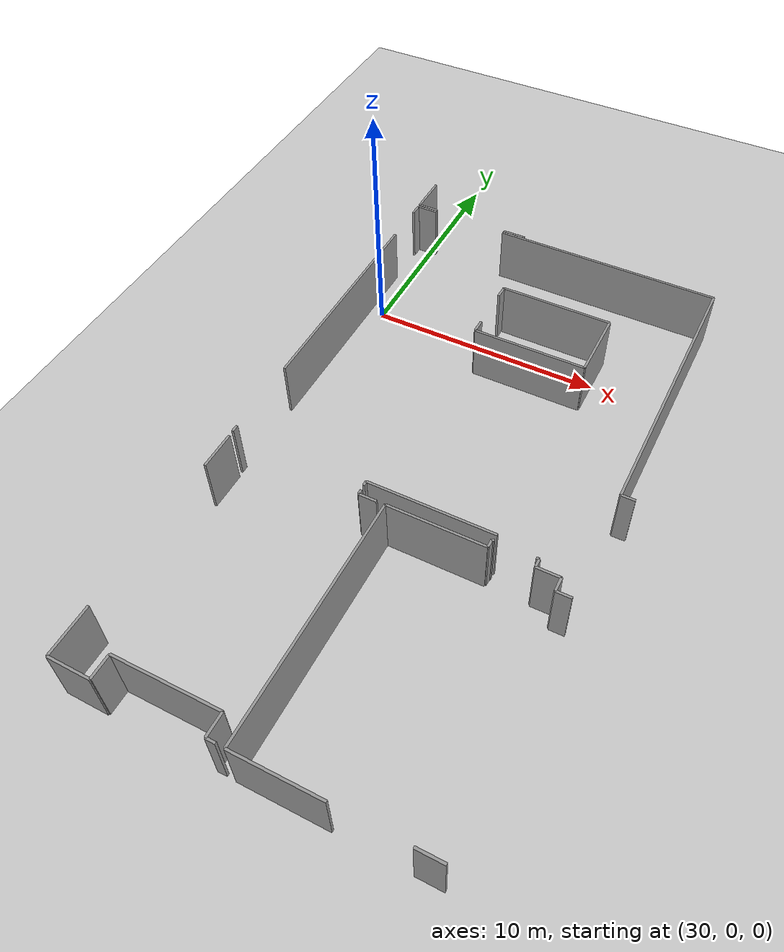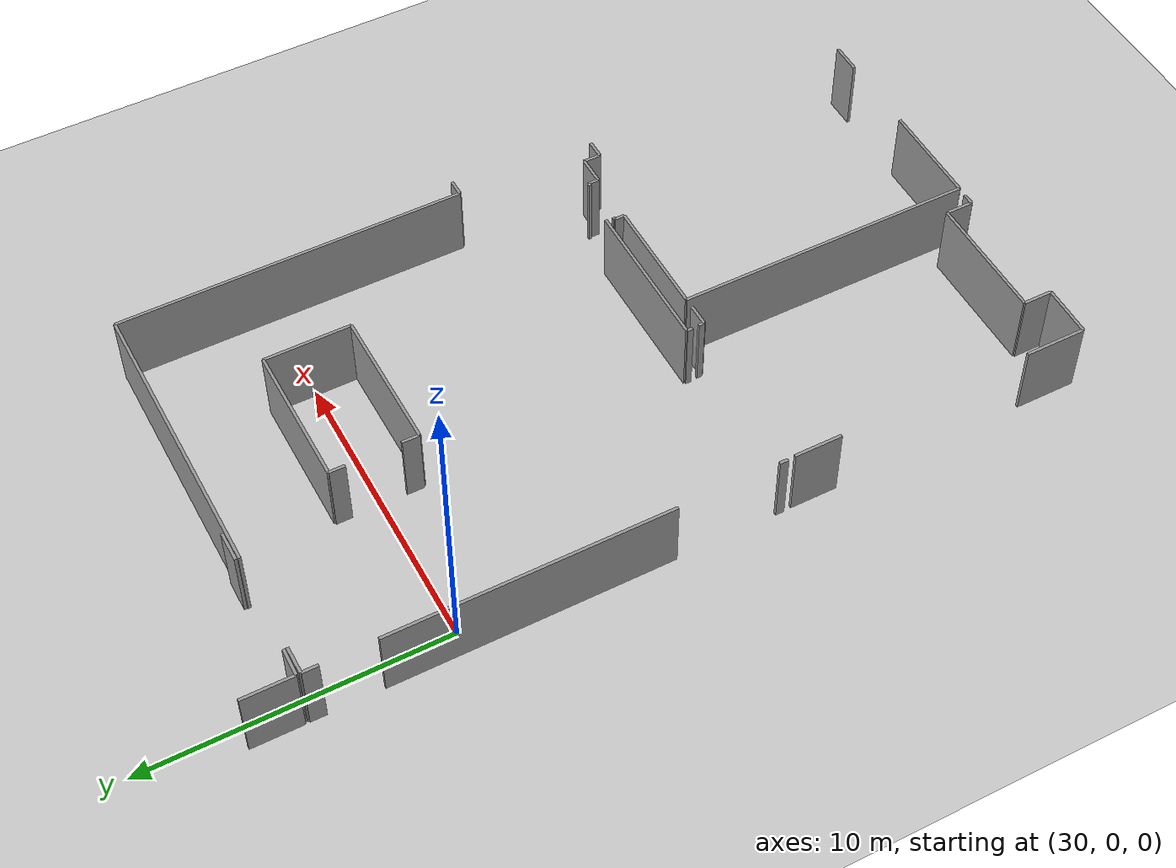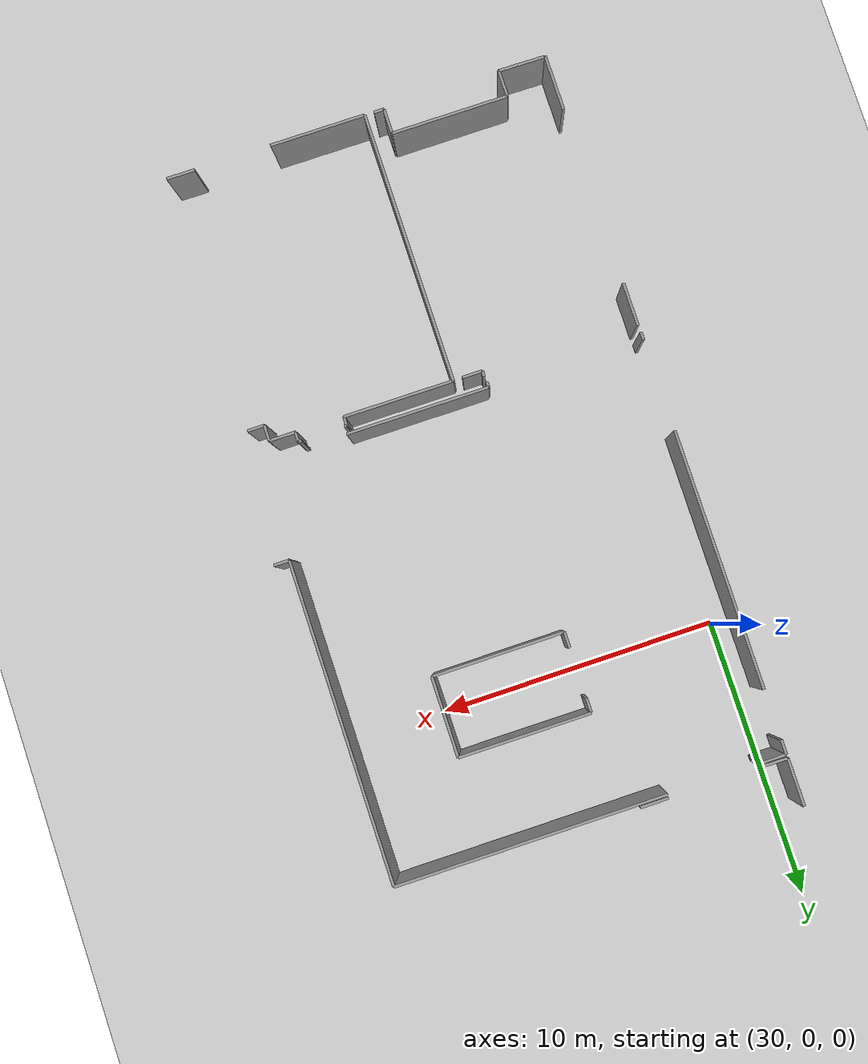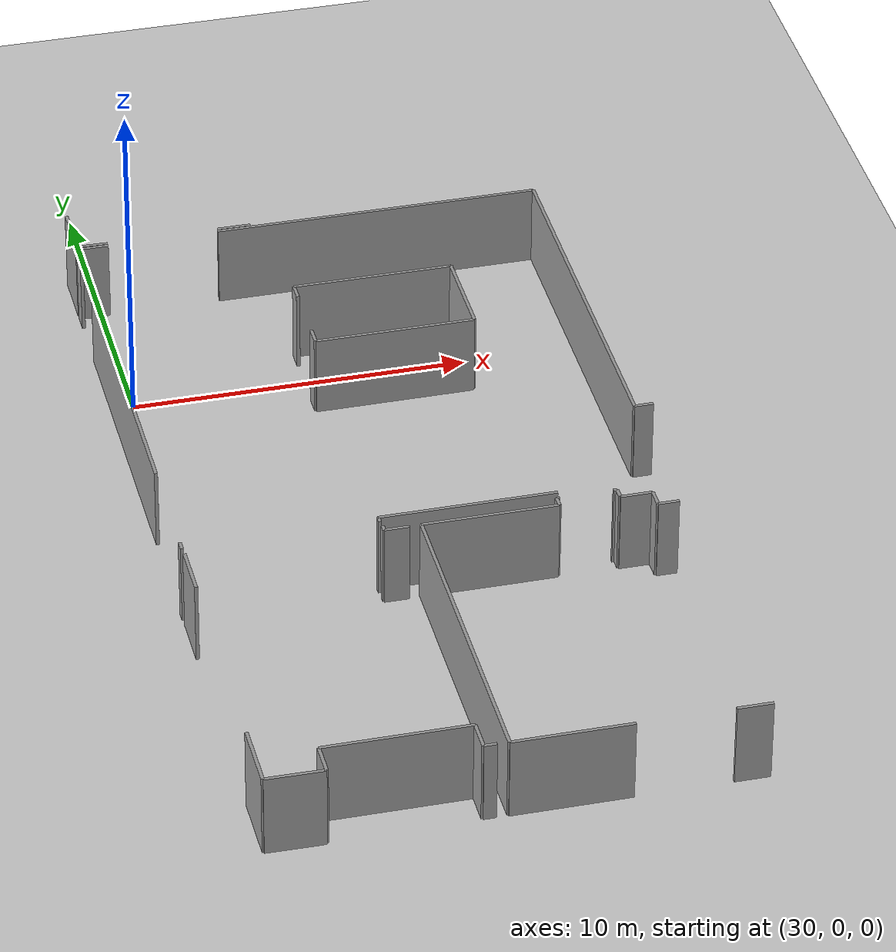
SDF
<sdf version="1.6">
 <world name="default">
  <model name="ground_plane">
   <static>1</static>
   <link name="link">
    <collision name="collision">
     <geometry><plane><normal>0 0 1</normal><size>100 100</size></plane></geometry>
     <surface><friction><ode><mu>100</mu><mu2>50</mu2></ode></friction></surface>
    </collision>
    <visual name="visual">
     <cast_shadows>0</cast_shadows>
     <geometry><plane><normal>0 0 1</normal><size>100 100</size></plane></geometry>
     <material>
      <script><uri>file://media/materials/scripts/gazebo.material</uri><name>Gazebo/Grey</name></script>
     </material>
    </visual>
   </link>
  </model>
  <model name="50055639">
   <static>1</static>
   <link name="Wall_371">
    <collision name="Wall_371_Collision">
     <geometry><box><size>2.02325492834 0.1 2.5</size></box></geometry>
     <pose>1.01162746417 0 1.25 0 0 0</pose>
    </collision>
    <visual name="Wall_371_Visual">
     <pose>1.01162746417 0 1.25 0 0 0</pose>
     <geometry><box><size>2.02325492834 0.1 2.5</size></box></geometry>
     <material>
      <script><uri>file://media/materials/scripts/gazebo.material</uri><name>Gazebo/Grey</name></script>
      <ambient>1 1 1 1</ambient>
     </material>
    </visual>
    <pose>99.7638964699 -41.7102781198 0 0 0 1.57079632679</pose>
   </link>
   <link name="Wall_372">
    <collision name="Wall_372_Collision">
     <geometry><box><size>1.58367077521 0.1 2.5</size></box></geometry>
     <pose>0.791835387603 0 1.25 0 0 0</pose>
    </collision>
    <visual name="Wall_372_Visual">
     <pose>0.791835387603 0 1.25 0 0 0</pose>
     <geometry><box><size>1.58367077521 0.1 2.5</size></box></geometry>
     <material>
      <script><uri>file://media/materials/scripts/gazebo.material</uri><name>Gazebo/Grey</name></script>
      <ambient>1 1 1 1</ambient>
     </material>
    </visual>
    <pose>99.7638964699 -33.1428934107 0 0 0 1.57079632679</pose>
   </link>
   <link name="Wall_373">
    <collision name="Wall_373_Collision">
     <geometry><box><size>0.193706444611 0.1 2.5</size></box></geometry>
     <pose>0.0968532223054 0 1.25 0 0 0</pose>
    </collision>
    <visual name="Wall_373_Visual">
     <pose>0.0968532223054 0 1.25 0 0 0</pose>
     <geometry><box><size>0.193706444611 0.1 2.5</size></box></geometry>
     <material>
      <script><uri>file://media/materials/scripts/gazebo.material</uri><name>Gazebo/Grey</name></script>
      <ambient>1 1 1 1</ambient>
     </material>
    </visual>
    <pose>105.401820282 -31.5592226355 0 0 0 -1.57079632679</pose>
   </link>
   <link name="Wall_374">
    <collision name="Wall_374_Collision">
     <geometry><box><size>0.730143820054 0.1 2.5</size></box></geometry>
     <pose>0.365071910027 0 1.25 0 0 0</pose>
    </collision>
    <visual name="Wall_374_Visual">
     <pose>0.365071910027 0 1.25 0 0 0</pose>
     <geometry><box><size>0.730143820054 0.1 2.5</size></box></geometry>
     <material>
      <script><uri>file://media/materials/scripts/gazebo.material</uri><name>Gazebo/Grey</name></script>
      <ambient>1 1 1 1</ambient>
     </material>
    </visual>
    <pose>105.401820282 -31.7529290801 0 0 0 0.0</pose>
   </link>
   <link name="Wall_375">
    <collision name="Wall_375_Collision">
     <geometry><box><size>0.373195902461 0.1 2.5</size></box></geometry>
     <pose>0.186597951231 0 1.25 0 0 0</pose>
    </collision>
    <visual name="Wall_375_Visual">
     <pose>0.186597951231 0 1.25 0 0 0</pose>
     <geometry><box><size>0.373195902461 0.1 2.5</size></box></geometry>
     <material>
      <script><uri>file://media/materials/scripts/gazebo.material</uri><name>Gazebo/Grey</name></script>
      <ambient>1 1 1 1</ambient>
     </material>
    </visual>
    <pose>106.131964102 -41.6842559565 0 0 0 3.14159265359</pose>
   </link>
   <link name="Wall_376">
    <collision name="Wall_376_Collision">
     <geometry><box><size>0.916487896521 0.1 2.5</size></box></geometry>
     <pose>0.45824394826 0 1.25 0 0 0</pose>
    </collision>
    <visual name="Wall_376_Visual">
     <pose>0.45824394826 0 1.25 0 0 0</pose>
     <geometry><box><size>0.916487896521 0.1 2.5</size></box></geometry>
     <material>
      <script><uri>file://media/materials/scripts/gazebo.material</uri><name>Gazebo/Grey</name></script>
      <ambient>1 1 1 1</ambient>
     </material>
    </visual>
    <pose>105.7587682 -41.6842559565 0 0 0 1.57079632679</pose>
   </link>
   <link name="Wall_377">
    <collision name="Wall_377_Collision">
     <geometry><box><size>4.27385470747 0.1 2.5</size></box></geometry>
     <pose>2.13692735374 0 1.25 0 0 0</pose>
    </collision>
    <visual name="Wall_377_Visual">
     <pose>2.13692735374 0 1.25 0 0 0</pose>
     <geometry><box><size>4.27385470747 0.1 2.5</size></box></geometry>
     <material>
      <script><uri>file://media/materials/scripts/gazebo.material</uri><name>Gazebo/Grey</name></script>
      <ambient>1 1 1 1</ambient>
     </material>
    </visual>
    <pose>105.7587682 -40.76776806 0 0 0 3.14159265359</pose>
   </link>
   <link name="Wall_378">
    <collision name="Wall_378_Collision">
     <geometry><box><size>0.96180454182 0.1 2.5</size></box></geometry>
     <pose>0.48090227091 0 1.25 0 0 0</pose>
    </collision>
    <visual name="Wall_378_Visual">
     <pose>0.48090227091 0 1.25 0 0 0</pose>
     <geometry><box><size>0.96180454182 0.1 2.5</size></box></geometry>
     <material>
      <script><uri>file://media/materials/scripts/gazebo.material</uri><name>Gazebo/Grey</name></script>
      <ambient>1 1 1 1</ambient>
     </material>
    </visual>
    <pose>101.484913492 -40.76776806 0 0 0 -1.57079632679</pose>
   </link>
   <link name="Wall_379">
    <collision name="Wall_379_Collision">
     <geometry><box><size>1.72112517502 0.1 2.5</size></box></geometry>
     <pose>0.860562587511 0 1.25 0 0 0</pose>
    </collision>
    <visual name="Wall_379_Visual">
     <pose>0.860562587511 0 1.25 0 0 0</pose>
     <geometry><box><size>1.72112517502 0.1 2.5</size></box></geometry>
     <material>
      <script><uri>file://media/materials/scripts/gazebo.material</uri><name>Gazebo/Grey</name></script>
      <ambient>1 1 1 1</ambient>
     </material>
    </visual>
    <pose>101.484913492 -41.7295726018 0 0 0 3.13038203018</pose>
   </link>
   <link name="Wall_380">
    <collision name="Wall_380_Collision">
     <geometry><box><size>9.95861841354 0.1 2.5</size></box></geometry>
     <pose>4.97930920677 0 1.25 0 0 0</pose>
    </collision>
    <visual name="Wall_380_Visual">
     <pose>4.97930920677 0 1.25 0 0 0</pose>
     <geometry><box><size>9.95861841354 0.1 2.5</size></box></geometry>
     <material>
      <script><uri>file://media/materials/scripts/gazebo.material</uri><name>Gazebo/Grey</name></script>
      <ambient>1 1 1 1</ambient>
     </material>
    </visual>
    <pose>106.46707879 -41.7007578162 0 0 0 1.57079632679</pose>
   </link>
   <link name="Wall_381">
    <collision name="Wall_381_Collision">
     <geometry><box><size>3.98380279008 0.1 2.5</size></box></geometry>
     <pose>1.99190139504 0 1.25 0 0 0</pose>
    </collision>
    <visual name="Wall_381_Visual">
     <pose>1.99190139504 0 1.25 0 0 0</pose>
     <geometry><box><size>3.98380279008 0.1 2.5</size></box></geometry>
     <material>
      <script><uri>file://media/materials/scripts/gazebo.material</uri><name>Gazebo/Grey</name></script>
      <ambient>1 1 1 1</ambient>
     </material>
    </visual>
    <pose>106.46707879 -31.7421394026 0 0 0 0.0</pose>
   </link>
   <link name="Wall_382">
    <collision name="Wall_382_Collision">
     <geometry><box><size>0.331179629089 0.1 2.5</size></box></geometry>
     <pose>0.165589814544 0 1.25 0 0 0</pose>
    </collision>
    <visual name="Wall_382_Visual">
     <pose>0.165589814544 0 1.25 0 0 0</pose>
     <geometry><box><size>0.331179629089 0.1 2.5</size></box></geometry>
     <material>
      <script><uri>file://media/materials/scripts/gazebo.material</uri><name>Gazebo/Grey</name></script>
      <ambient>1 1 1 1</ambient>
     </material>
    </visual>
    <pose>110.45088158 -31.7421394026 0 0 0 1.57079632679</pose>
   </link>
   <link name="Wall_383">
    <collision name="Wall_383_Collision">
     <geometry><box><size>0.0878406681984 0.1 2.5</size></box></geometry>
     <pose>0.0439203340992 0 1.25 0 0 0</pose>
    </collision>
    <visual name="Wall_383_Visual">
     <pose>0.0439203340992 0 1.25 0 0 0</pose>
     <geometry><box><size>0.0878406681984 0.1 2.5</size></box></geometry>
     <material>
      <script><uri>file://media/materials/scripts/gazebo.material</uri><name>Gazebo/Grey</name></script>
      <ambient>1 1 1 1</ambient>
     </material>
    </visual>
    <pose>110.45088158 -31.4109597735 0 0 0 0.0</pose>
   </link>
   <link name="Wall_384">
    <collision name="Wall_384_Collision">
     <geometry><box><size>0.111704895975 0.1 2.5</size></box></geometry>
     <pose>0.0558524479874 0 1.25 0 0 0</pose>
    </collision>
    <visual name="Wall_384_Visual">
     <pose>0.0558524479874 0 1.25 0 0 0</pose>
     <geometry><box><size>0.111704895975 0.1 2.5</size></box></geometry>
     <material>
      <script><uri>file://media/materials/scripts/gazebo.material</uri><name>Gazebo/Grey</name></script>
      <ambient>1 1 1 1</ambient>
     </material>
    </visual>
    <pose>112.094593737 -31.4109597735 0 0 0 0.0</pose>
   </link>
   <link name="Wall_385">
    <collision name="Wall_385_Collision">
     <geometry><box><size>0.345777427995 0.1 2.5</size></box></geometry>
     <pose>0.172888713997 0 1.25 0 0 0</pose>
    </collision>
    <visual name="Wall_385_Visual">
     <pose>0.172888713997 0 1.25 0 0 0</pose>
     <geometry><box><size>0.345777427995 0.1 2.5</size></box></geometry>
     <material>
      <script><uri>file://media/materials/scripts/gazebo.material</uri><name>Gazebo/Grey</name></script>
      <ambient>1 1 1 1</ambient>
     </material>
    </visual>
    <pose>112.206298633 -31.4109597735 0 0 0 -1.57079632679</pose>
   </link>
   <link name="Wall_386">
    <collision name="Wall_386_Collision">
     <geometry><box><size>0.944414120514 0.1 2.5</size></box></geometry>
     <pose>0.472207060257 0 1.25 0 0 0</pose>
    </collision>
    <visual name="Wall_386_Visual">
     <pose>0.472207060257 0 1.25 0 0 0</pose>
     <geometry><box><size>0.944414120514 0.1 2.5</size></box></geometry>
     <material>
      <script><uri>file://media/materials/scripts/gazebo.material</uri><name>Gazebo/Grey</name></script>
      <ambient>1 1 1 1</ambient>
     </material>
    </visual>
    <pose>112.206298633 -31.7567372015 0 0 0 0.0</pose>
   </link>
   <link name="Wall_387">
    <collision name="Wall_387_Collision">
     <geometry><box><size>0.565252161109 0.1 2.5</size></box></geometry>
     <pose>0.282626080554 0 1.25 0 0 0</pose>
    </collision>
    <visual name="Wall_387_Visual">
     <pose>0.282626080554 0 1.25 0 0 0</pose>
     <geometry><box><size>0.565252161109 0.1 2.5</size></box></geometry>
     <material>
      <script><uri>file://media/materials/scripts/gazebo.material</uri><name>Gazebo/Grey</name></script>
      <ambient>1 1 1 1</ambient>
     </material>
    </visual>
    <pose>113.150712753 -31.7567372015 0 0 0 -1.57079632679</pose>
   </link>
   <link name="Wall_388">
    <collision name="Wall_388_Collision">
     <geometry><box><size>0.614376927861 0.1 2.5</size></box></geometry>
     <pose>0.307188463931 0 1.25 0 0 0</pose>
    </collision>
    <visual name="Wall_388_Visual">
     <pose>0.307188463931 0 1.25 0 0 0</pose>
     <geometry><box><size>0.614376927861 0.1 2.5</size></box></geometry>
     <material>
      <script><uri>file://media/materials/scripts/gazebo.material</uri><name>Gazebo/Grey</name></script>
      <ambient>1 1 1 1</ambient>
     </material>
    </visual>
    <pose>113.150712753 -32.3219893626 0 0 0 0.0</pose>
   </link>
   <link name="Wall_392">
    <collision name="Wall_392_Collision">
     <geometry><box><size>1.02946216631 0.1 2.5</size></box></geometry>
     <pose>0.514731083157 0 1.25 0 0 0</pose>
    </collision>
    <visual name="Wall_392_Visual">
     <pose>0.514731083157 0 1.25 0 0 0</pose>
     <geometry><box><size>1.02946216631 0.1 2.5</size></box></geometry>
     <material>
      <script><uri>file://media/materials/scripts/gazebo.material</uri><name>Gazebo/Grey</name></script>
      <ambient>1 1 1 1</ambient>
     </material>
    </visual>
    <pose>113.765089681 -41.7007578162 0 0 0 3.14159265359</pose>
   </link>
   <link name="Wall_393">
    <collision name="Wall_393_Collision">
     <geometry><box><size>3.48036913391 0.1 2.5</size></box></geometry>
     <pose>1.74018456695 0 1.25 0 0 0</pose>
    </collision>
    <visual name="Wall_393_Visual">
     <pose>1.74018456695 0 1.25 0 0 0</pose>
     <geometry><box><size>3.48036913391 0.1 2.5</size></box></geometry>
     <material>
      <script><uri>file://media/materials/scripts/gazebo.material</uri><name>Gazebo/Grey</name></script>
      <ambient>1 1 1 1</ambient>
     </material>
    </visual>
    <pose>109.947447924 -41.7007578162 0 0 0 3.14159265359</pose>
   </link>
   <link name="Wall_394">
    <collision name="Wall_394_Collision">
     <geometry><box><size>0.29081354168 0.1 2.5</size></box></geometry>
     <pose>0.14540677084 0 1.25 0 0 0</pose>
    </collision>
    <visual name="Wall_394_Visual">
     <pose>0.14540677084 0 1.25 0 0 0</pose>
     <geometry><box><size>0.29081354168 0.1 2.5</size></box></geometry>
     <material>
      <script><uri>file://media/materials/scripts/gazebo.material</uri><name>Gazebo/Grey</name></script>
      <ambient>1 1 1 1</ambient>
     </material>
    </visual>
    <pose>99.7440942383 -31.3176607979 0 0 0 1.57079632679</pose>
   </link>
   <link name="Wall_395">
    <collision name="Wall_395_Collision">
     <geometry><box><size>9.35947397149 0.1 2.5</size></box></geometry>
     <pose>4.67973698574 0 1.25 0 0 0</pose>
    </collision>
    <visual name="Wall_395_Visual">
     <pose>4.67973698574 0 1.25 0 0 0</pose>
     <geometry><box><size>9.35947397149 0.1 2.5</size></box></geometry>
     <material>
      <script><uri>file://media/materials/scripts/gazebo.material</uri><name>Gazebo/Grey</name></script>
      <ambient>1 1 1 1</ambient>
     </material>
    </visual>
    <pose>99.7440942383 -27.6814125592 0 0 0 1.57079632679</pose>
   </link>
   <link name="Wall_396">
    <collision name="Wall_396_Collision">
     <geometry><box><size>0.529328882062 0.1 2.5</size></box></geometry>
     <pose>0.264664441031 0 1.25 0 0 0</pose>
    </collision>
    <visual name="Wall_396_Visual">
     <pose>0.264664441031 0 1.25 0 0 0</pose>
     <geometry><box><size>0.529328882062 0.1 2.5</size></box></geometry>
     <material>
      <script><uri>file://media/materials/scripts/gazebo.material</uri><name>Gazebo/Grey</name></script>
      <ambient>1 1 1 1</ambient>
     </material>
    </visual>
    <pose>99.7440942383 -16.5359296259 0 0 0 1.57079632679</pose>
   </link>
   <link name="Wall_397">
    <collision name="Wall_397_Collision">
     <geometry><box><size>0.911029589104 0.1 2.5</size></box></geometry>
     <pose>0.455514794552 0 1.25 0 0 0</pose>
    </collision>
    <visual name="Wall_397_Visual">
     <pose>0.455514794552 0 1.25 0 0 0</pose>
     <geometry><box><size>0.911029589104 0.1 2.5</size></box></geometry>
     <material>
      <script><uri>file://media/materials/scripts/gazebo.material</uri><name>Gazebo/Grey</name></script>
      <ambient>1 1 1 1</ambient>
     </material>
    </visual>
    <pose>99.7440942383 -16.0066007439 0 0 0 0.0</pose>
   </link>
   <link name="Wall_398">
    <collision name="Wall_398_Collision">
     <geometry><box><size>9.75551860267 0.1 2.5</size></box></geometry>
     <pose>4.87775930134 0 1.25 0 0 0</pose>
    </collision>
    <visual name="Wall_398_Visual">
     <pose>4.87775930134 0 1.25 0 0 0</pose>
     <geometry><box><size>9.75551860267 0.1 2.5</size></box></geometry>
     <material>
      <script><uri>file://media/materials/scripts/gazebo.material</uri><name>Gazebo/Grey</name></script>
      <ambient>1 1 1 1</ambient>
     </material>
    </visual>
    <pose>103.998146714 -16.0066007439 0 0 0 0.0</pose>
   </link>
   <link name="Wall_399">
    <collision name="Wall_399_Collision">
     <geometry><box><size>11.6009342591 0.1 2.5</size></box></geometry>
     <pose>5.80046712956 0 1.25 0 0 0</pose>
    </collision>
    <visual name="Wall_399_Visual">
     <pose>5.80046712956 0 1.25 0 0 0</pose>
     <geometry><box><size>11.6009342591 0.1 2.5</size></box></geometry>
     <material>
      <script><uri>file://media/materials/scripts/gazebo.material</uri><name>Gazebo/Grey</name></script>
      <ambient>1 1 1 1</ambient>
     </material>
    </visual>
    <pose>113.753665317 -16.0066007439 0 0 0 -1.57079632679</pose>
   </link>
   <link name="Wall_400">
    <collision name="Wall_400_Collision">
     <geometry><box><size>0.557255106056 0.1 2.5</size></box></geometry>
     <pose>0.278627553028 0 1.25 0 0 0</pose>
    </collision>
    <visual name="Wall_400_Visual">
     <pose>0.278627553028 0 1.25 0 0 0</pose>
     <geometry><box><size>0.557255106056 0.1 2.5</size></box></geometry>
     <material>
      <script><uri>file://media/materials/scripts/gazebo.material</uri><name>Gazebo/Grey</name></script>
      <ambient>1 1 1 1</ambient>
     </material>
    </visual>
    <pose>113.753665317 -27.607535003 0 0 0 0.0</pose>
   </link>
   <link name="Wall_402">
    <collision name="Wall_402_Collision">
     <geometry><box><size>5.17472930603 0.1 2.5</size></box></geometry>
     <pose>2.58736465302 0 1.25 0 0 0</pose>
    </collision>
    <visual name="Wall_402_Visual">
     <pose>2.58736465302 0 1.25 0 0 0</pose>
     <geometry><box><size>5.17472930603 0.1 2.5</size></box></geometry>
     <material>
      <script><uri>file://media/materials/scripts/gazebo.material</uri><name>Gazebo/Grey</name></script>
      <ambient>1 1 1 1</ambient>
     </material>
    </visual>
    <pose>110.548369489 -31.1436296475 0 0 0 3.14159265359</pose>
   </link>
   <link name="Wall_403">
    <collision name="Wall_403_Collision">
     <geometry><box><size>0.199418626791 0.1 2.5</size></box></geometry>
     <pose>0.0997093133957 0 1.25 0 0 0</pose>
    </collision>
    <visual name="Wall_403_Visual">
     <pose>0.0997093133957 0 1.25 0 0 0</pose>
     <geometry><box><size>0.199418626791 0.1 2.5</size></box></geometry>
     <material>
      <script><uri>file://media/materials/scripts/gazebo.material</uri><name>Gazebo/Grey</name></script>
      <ambient>1 1 1 1</ambient>
     </material>
    </visual>
    <pose>105.373640183 -31.1436296475 0 0 0 -1.57079632679</pose>
   </link>
   <link name="Wall_410">
    <collision name="Wall_410_Collision">
     <geometry><box><size>0.576930400234 0.1 2.5</size></box></geometry>
     <pose>0.288465200117 0 1.25 0 0 0</pose>
    </collision>
    <visual name="Wall_410_Visual">
     <pose>0.288465200117 0 1.25 0 0 0</pose>
     <geometry><box><size>0.576930400234 0.1 2.5</size></box></geometry>
     <material>
      <script><uri>file://media/materials/scripts/gazebo.material</uri><name>Gazebo/Grey</name></script>
      <ambient>1 1 1 1</ambient>
     </material>
    </visual>
    <pose>105.576486119 -22.3131037459 0 0 0 1.57079632679</pose>
   </link>
   <link name="Wall_411">
    <collision name="Wall_411_Collision">
     <geometry><box><size>0.53415250257 0.1 2.5</size></box></geometry>
     <pose>0.267076251285 0 1.25 0 0 0</pose>
    </collision>
    <visual name="Wall_411_Visual">
     <pose>0.267076251285 0 1.25 0 0 0</pose>
     <geometry><box><size>0.53415250257 0.1 2.5</size></box></geometry>
     <material>
      <script><uri>file://media/materials/scripts/gazebo.material</uri><name>Gazebo/Grey</name></script>
      <ambient>1 1 1 1</ambient>
     </material>
    </visual>
    <pose>105.576486119 -19.9502913213 0 0 0 1.57079632679</pose>
   </link>
   <link name="Wall_412">
    <collision name="Wall_412_Collision">
     <geometry><box><size>4.77157618147 0.1 2.5</size></box></geometry>
     <pose>2.38578809073 0 1.25 0 0 0</pose>
    </collision>
    <visual name="Wall_412_Visual">
     <pose>2.38578809073 0 1.25 0 0 0</pose>
     <geometry><box><size>4.77157618147 0.1 2.5</size></box></geometry>
     <material>
      <script><uri>file://media/materials/scripts/gazebo.material</uri><name>Gazebo/Grey</name></script>
      <ambient>1 1 1 1</ambient>
     </material>
    </visual>
    <pose>105.576486119 -19.4161388187 0 0 0 0.0</pose>
   </link>
   <link name="Wall_413">
    <collision name="Wall_413_Collision">
     <geometry><box><size>2.88173244139 0.1 2.5</size></box></geometry>
     <pose>1.44086622069 0 1.25 0 0 0</pose>
    </collision>
    <visual name="Wall_413_Visual">
     <pose>1.44086622069 0 1.25 0 0 0</pose>
     <geometry><box><size>2.88173244139 0.1 2.5</size></box></geometry>
     <material>
      <script><uri>file://media/materials/scripts/gazebo.material</uri><name>Gazebo/Grey</name></script>
      <ambient>1 1 1 1</ambient>
     </material>
    </visual>
    <pose>110.348062301 -19.4161388187 0 0 0 -1.57079632679</pose>
   </link>
   <link name="Wall_414">
    <collision name="Wall_414_Collision">
     <geometry><box><size>4.77160049503 0.1 2.5</size></box></geometry>
     <pose>2.38580024752 0 1.25 0 0 0</pose>
    </collision>
    <visual name="Wall_414_Visual">
     <pose>2.38580024752 0 1.25 0 0 0</pose>
     <geometry><box><size>4.77160049503 0.1 2.5</size></box></geometry>
     <material>
      <script><uri>file://media/materials/scripts/gazebo.material</uri><name>Gazebo/Grey</name></script>
      <ambient>1 1 1 1</ambient>
     </material>
    </visual>
    <pose>110.348062301 -22.2978712601 0 0 0 -3.13840032605</pose>
   </link>
   <link name="Wall_415">
    <collision name="Wall_415_Collision">
     <geometry><box><size>1.69892991787 0.1 2.5</size></box></geometry>
     <pose>0.849464958936 0 1.25 0 0 0</pose>
    </collision>
    <visual name="Wall_415_Visual">
     <pose>0.849464958936 0 1.25 0 0 0</pose>
     <geometry><box><size>1.69892991787 0.1 2.5</size></box></geometry>
     <material>
      <script><uri>file://media/materials/scripts/gazebo.material</uri><name>Gazebo/Grey</name></script>
      <ambient>1 1 1 1</ambient>
     </material>
    </visual>
    <pose>99.7402861169 -15.8756013658 0 0 0 1.57079632679</pose>
   </link>
   <link name="Wall_445">
    <collision name="Wall_445_Collision">
     <geometry><box><size>1.00153594232 0.1 2.5</size></box></geometry>
     <pose>0.50076797116 0 1.25 0 0 0</pose>
    </collision>
    <visual name="Wall_445_Visual">
     <pose>0.50076797116 0 1.25 0 0 0</pose>
     <geometry><box><size>1.00153594232 0.1 2.5</size></box></geometry>
     <material>
      <script><uri>file://media/materials/scripts/gazebo.material</uri><name>Gazebo/Grey</name></script>
      <ambient>1 1 1 1</ambient>
     </material>
    </visual>
    <pose>105.014788205 -15.8938803488 0 0 0 3.14159265359</pose>
   </link>
   <link name="Wall_446">
    <collision name="Wall_446_Collision">
     <geometry><box><size>0.916797074029 0.1 2.5</size></box></geometry>
     <pose>0.458398537015 0 1.25 0 0 0</pose>
    </collision>
    <visual name="Wall_446_Visual">
     <pose>0.458398537015 0 1.25 0 0 0</pose>
     <geometry><box><size>0.916797074029 0.1 2.5</size></box></geometry>
     <material>
      <script><uri>file://media/materials/scripts/gazebo.material</uri><name>Gazebo/Grey</name></script>
      <ambient>1 1 1 1</ambient>
     </material>
    </visual>
    <pose>100.656900951 -15.8938803488 0 0 0 3.12165346012</pose>
   </link>
   <pose>-70.4 20.8983593343 0 0 0 0</pose>
  </model>
 </world>
</sdf>
